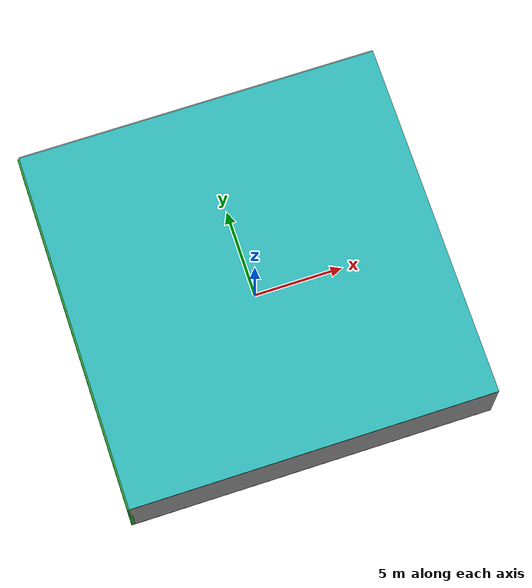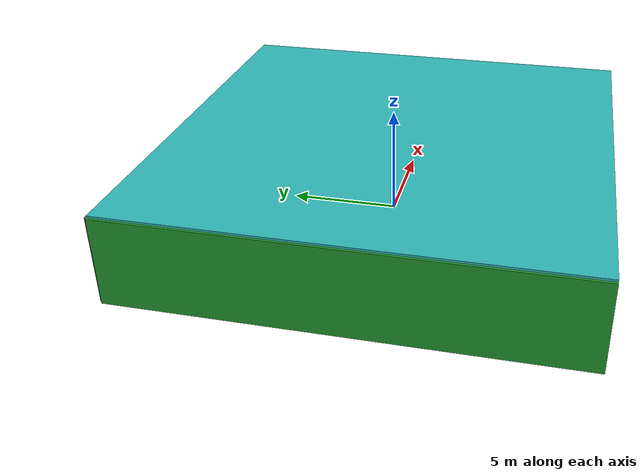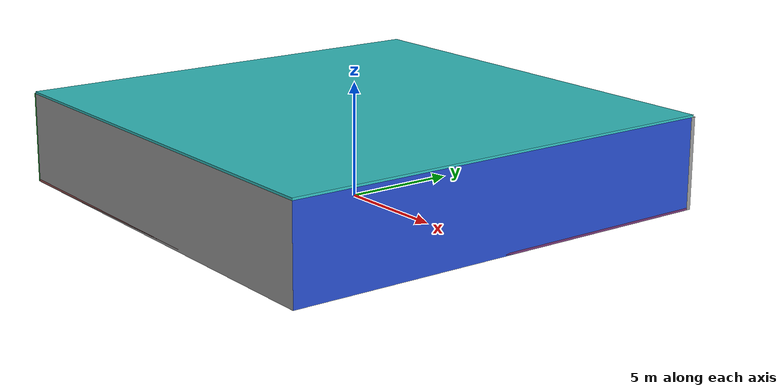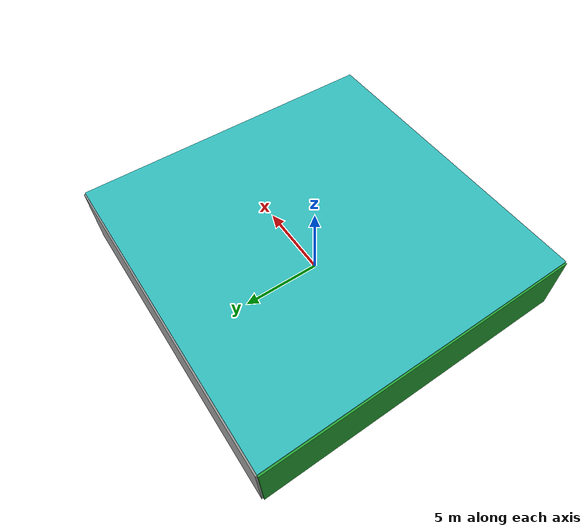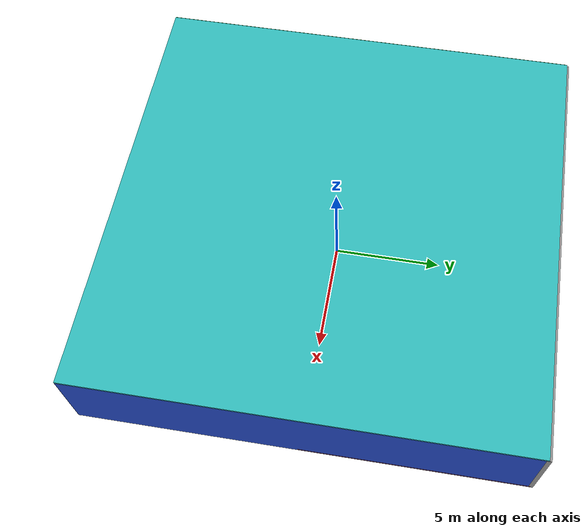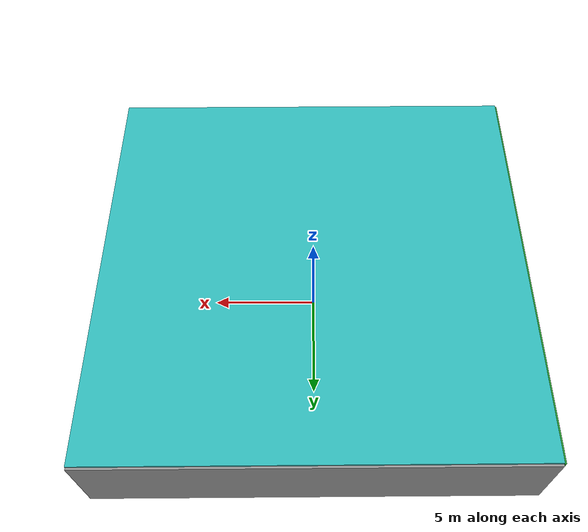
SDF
<sdf version="1.4">
 <world name="default">
  <physics type="ode">
   <max_step_size>0.001</max_step_size>
   <real_time_factor>1</real_time_factor>
   <real_time_update_rate>1000</real_time_update_rate>
   <gravity>0 0 -9.8</gravity>
  </physics>
  <scene><ambient>0.4 0.4 0.4 1</ambient><background>0.7 0.7 0.7 1</background><shadows>1</shadows></scene>
  <model name="Surrounding">
   <static>1</static>
   <link name="Ceiling">
    <collision name="Ceiling_Collision"><geometry><box><size>20 20 0.1</size></box></geometry></collision>
    <visual name="Ceiling_Visual">
     <geometry><box><size>20 20 0.1</size></box></geometry>
     <material>
      <script><uri>file://media/materials/scripts/gazebo.material</uri><name>Gazebo/Turquoise</name></script>
     </material>
    </visual>
    <pose>0 0 4.05 0 0 0</pose>
   </link>
   <link name="Wall_South">
    <collision name="Wall_South_Collision">
     <geometry><box><size>20 0 4</size></box></geometry>
     <pose>0 0 2 0 -0 0</pose>
    </collision>
    <visual name="Wall_South_Visual">
     <pose>0 0 2 0 -0 0</pose>
     <geometry><box><size>20 0 4</size></box></geometry>
     <material>
      <script><uri>file://media/materials/scripts/gazebo.material</uri><name>Gazebo/Grey</name></script>
     </material>
    </visual>
    <velocity_decay><linear>0</linear><angular>0</angular></velocity_decay>
    <pose>0 -10 0 0 -0 0</pose>
   </link>
   <link name="Wall_East">
    <collision name="Wall_21_Collision">
     <geometry><box><size>20 0 4</size></box></geometry>
     <pose>0 0 2 0 -0 0</pose>
    </collision>
    <visual name="Wall_21_Visual">
     <pose>0 0 2 0 -0 0</pose>
     <geometry><box><size>20 0 4</size></box></geometry>
     <material>
      <script><uri>file://media/materials/scripts/gazebo.material</uri><name>Gazebo/Blue</name></script>
     </material>
    </visual>
    <velocity_decay><linear>0</linear><angular>0</angular></velocity_decay>
    <pose>10 0 0 0 -0 1.5708</pose>
   </link>
   <link name="Wall_North">
    <collision name="Wall_22_Collision">
     <geometry><box><size>20 0.2 4</size></box></geometry>
     <pose>0 0 2 0 -0 0</pose>
    </collision>
    <visual name="Wall_22_Visual">
     <pose>0 0 2 0 -0 0</pose>
     <geometry><box><size>20 0.2 4</size></box></geometry>
     <material>
      <script><uri>file://media/materials/scripts/gazebo.material</uri><name>Gazebo/Grey</name></script>
     </material>
    </visual>
    <velocity_decay><linear>0</linear><angular>0</angular></velocity_decay>
    <pose>0 10 0 0 -0 0</pose>
   </link>
   <link name="Wall_West">
    <collision name="Wall_23_Collision">
     <geometry><box><size>20 0.2 4</size></box></geometry>
     <pose>0 0 2 0 -0 0</pose>
    </collision>
    <visual name="Wall_23_Visual">
     <pose>0 0 2 0 -0 0</pose>
     <geometry><box><size>20 0.2 4</size></box></geometry>
     <material>
      <script><uri>file://media/materials/scripts/gazebo.material</uri><name>Gazebo/Green</name></script>
     </material>
    </visual>
    <velocity_decay><linear>0</linear><angular>0</angular></velocity_decay>
    <pose>-10 0 0 0 0 -1.5708</pose>
   </link>
   <link name="Ground_link">
    <collision name="collision">
     <pose>0 0 .05 0 -0 0</pose>
     <geometry><box><size>20 20 0.1</size></box></geometry>
    </collision>
    <visual name="visual">
     <pose>0 0 .05 0 -0 0</pose>
     <geometry><box><size>20 20 0.1</size></box></geometry>
     <material>
      <script><uri>file://media/materials/scripts/gazebo.material</uri><name>Gazebo/RedTransparent</name></script>
     </material>
    </visual>
   </link>
   <static>1</static>
  </model>
  <spherical_coordinates>
   <surface_model>EARTH_WGS84</surface_model>
   <latitude_deg>0</latitude_deg>
   <longitude_deg>0</longitude_deg>
   <elevation>0</elevation>
   <heading_deg>0</heading_deg>
  </spherical_coordinates>
  <light name="lightball_0" type="diffuse">
   <diffuse>0.8 0.8 0.8 1</diffuse>
   <specular>0.2 0.2 0.2 1</specular>
   <attenuation>
    <range>100</range>
    <constant>0.7</constant>
    <linear>0.01</linear>
    <quadratic>0.001</quadratic>
   </attenuation>
   <direction>-0.5 0.1 -0.9</direction>
   <pose>5.72459722538 5.21046331719 0.761317201912 0 0 0</pose>
  </light>
  <light name="lightball_1" type="diffuse">
   <diffuse>0.8 0.8 0.8 1</diffuse>
   <specular>0.2 0.2 0.2 1</specular>
   <attenuation>
    <range>100</range>
    <constant>0.7</constant>
    <linear>0.01</linear>
    <quadratic>0.001</quadratic>
   </attenuation>
   <direction>-0.5 0.1 -0.9</direction>
   <pose>-6.1671624935 -3.11739351588 2.55500967657 0 0 0</pose>
  </light>
  <light name="lightball_2" type="diffuse">
   <diffuse>0.8 0.8 0.8 1</diffuse>
   <specular>0.2 0.2 0.2 1</specular>
   <attenuation>
    <range>100</range>
    <constant>0.7</constant>
    <linear>0.01</linear>
    <quadratic>0.001</quadratic>
   </attenuation>
   <direction>-0.5 0.1 -0.9</direction>
   <pose>-9.64216127761 -3.96304889712 3.89747487976 0 0 0</pose>
  </light>
  <light name="lightball_3" type="diffuse">
   <diffuse>0.8 0.8 0.8 1</diffuse>
   <specular>0.2 0.2 0.2 1</specular>
   <attenuation>
    <range>100</range>
    <constant>0.7</constant>
    <linear>0.01</linear>
    <quadratic>0.001</quadratic>
   </attenuation>
   <direction>-0.5 0.1 -0.9</direction>
   <pose>-2.99163439318 3.57249311562 0.838752783071 0 0 0</pose>
  </light>
  <light name="lightball_4" type="diffuse">
   <diffuse>0.8 0.8 0.8 1</diffuse>
   <specular>0.2 0.2 0.2 1</specular>
   <attenuation>
    <range>100</range>
    <constant>0.7</constant>
    <linear>0.01</linear>
    <quadratic>0.001</quadratic>
   </attenuation>
   <direction>-0.5 0.1 -0.9</direction>
   <pose>4.35706349189 3.88032289193 2.26364807277 0 0 0</pose>
  </light>
  <light name="lightball_5" type="diffuse">
   <diffuse>0.8 0.8 0.8 1</diffuse>
   <specular>0.2 0.2 0.2 1</specular>
   <attenuation>
    <range>100</range>
    <constant>0.7</constant>
    <linear>0.01</linear>
    <quadratic>0.001</quadratic>
   </attenuation>
   <direction>-0.5 0.1 -0.9</direction>
   <pose>-0.478612273658 9.58278806724 3.29901338864 0 0 0</pose>
  </light>
  <include><uri>model://cabinet</uri><pose>-6.32435589642 -4.18112620712 0 0 0 1.04903705228</pose></include>
  <include><uri>model://cabinet</uri><pose>-8.21250068061 -1.85623584846 0 0 0 0.846451140664</pose></include>
  <include><uri>model://cabinet</uri><pose>-2.0989887415 -5.09487872327 0 0 0 0.590745101974</pose></include>
  <include><uri>model://cabinet</uri><pose>1.48877849593 8.43411009045 0 0 0 2.549192471</pose></include>
  <include>
   <uri>model://robocup_3Dsim_goal</uri>
   <pose>5.0062840516 -3.69721658808 0 0 0 2.12435754529</pose>
  </include>
  <include>
   <uri>model://robocup_3Dsim_goal</uri>
   <pose>6.83485457147 6.37646006684 0 0 0 0.159713232827</pose>
  </include>
 </world>
</sdf>

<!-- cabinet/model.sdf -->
<sdf version="1.5">
  <model name="cabinet">
    <static>true</static>
    <link name="cabinet_bottom_plate">
      <inertial>
        <pose>0 0 -1 0 0 0</pose>
        <inertia>
          <ixx>2.050000</ixx>
          <ixy>0</ixy>
          <ixz>0</ixz>
          <iyy>2.050000</iyy>
          <iyz>0</iyz>
          <izz>2.050000</izz>
        </inertia>
        <mass>25.000000</mass>
      </inertial>
      <collision name="cabinet_bottom_plate_geom">
        <pose>0 0 0.010000 0 0 0</pose>
        <geometry>
          <box>
            <size>0.450000 0.450000 0.020000</size>
          </box>
        </geometry>
      </collision>
      <visual name="cabinet_bottom_plate_geom_visual">
        <pose>0 0 0.010000 0 0 0</pose>
        <geometry>
          <box>
            <size>0.450000 0.450000 0.020000</size>
          </box>
        </geometry>
        <material>
          <script>
            <uri>model://media/materials/scripts/gazebo.material</uri>
            <name>Gazebo/Wood</name>
          </script>
        </material>
      </visual>
      <collision name="cabinet_bottom_plate_geom_cabinet_back_plate">
        <pose>0.235000 0 0.510000 0 0 0</pose>
        <geometry>
          <box>
            <size>0.020000 0.450000 1.020000</size>
          </box>
        </geometry>
      </collision>
      <visual name="cabinet_bottom_plate_geom_cabinet_back_plate_visual">
        <pose>0.235000 0 0.510000 0 0 0</pose>
        <geometry>
          <box>
            <size>0.020000 0.450000 1.020000</size>
          </box>
        </geometry>
        <material>
          <script>
            <uri>model://media/materials/scripts/gazebo.material</uri>
            <name>Gazebo/Wood</name>
          </script>
        </material>
      </visual>
      <collision name="cabinet_bottom_plate_geom_cabinet_left_plate">
        <pose>0 0.235000 0.510000 0 0 0</pose>
        <geometry>
          <box>
            <size>0.450000 0.020000 1.020000</size>
          </box>
        </geometry>
      </collision>
      <visual name="cabinet_bottom_plate_geom_cabinet_left_plate_visual">
        <pose>0 0.235000 0.510000 0 0 0</pose>
        <geometry>
          <box>
            <size>0.450000 0.020000 1.020000</size>
          </box>
        </geometry>
        <material>
          <script>
            <uri>model://media/materials/scripts/gazebo.material</uri>
            <name>Gazebo/Wood</name>
          </script>
        </material>
      </visual>
      <collision name="cabinet_bottom_plate_geom_cabinet_middle_plate">
        <pose>0 0 0.510000 0 0 0</pose>
        <geometry>
          <box>
            <size>0.450000 0.450000 0.020000</size>
          </box>
        </geometry>
      </collision>
      <visual name="cabinet_bottom_plate_geom_cabinet_middle_plate_visual">
        <pose>0 0 0.510000 0 0 0</pose>
        <geometry>
          <box>
            <size>0.450000 0.450000 0.020000</size>
          </box>
        </geometry>
        <material>
          <script>
            <uri>model://media/materials/scripts/gazebo.material</uri>
            <name>Gazebo/Wood</name>
          </script>
        </material>
      </visual>
      <collision name="cabinet_bottom_plate_geom_cabinet_right_plate">
        <pose>0 -0.235000 0.510000 0 0 0</pose>
        <geometry>
          <box>
            <size>0.450000 0.020000 1.020000</size>
          </box>
        </geometry>
      </collision>
      <visual name="cabinet_bottom_plate_geom_cabinet_right_plate_visual">
        <pose>0 -0.235000 0.510000 0 0 0</pose>
        <geometry>
          <box>
            <size>0.450000 0.020000 1.020000</size>
          </box>
        </geometry>
        <material>
          <script>
            <uri>model://media/materials/scripts/gazebo.material</uri>
            <name>Gazebo/Wood</name>
          </script>
        </material>
      </visual>
      <collision name="cabinet_bottom_plate_geom_cabinet_top_plate">
        <pose>0 0 1.010000 0 0 0</pose>
        <geometry>
          <box>
            <size>0.450000 0.450000 0.020000</size>
          </box>
        </geometry>
      </collision>
      <visual name="cabinet_bottom_plate_geom_cabinet_top_plate_visual">
        <pose>0 0 1.010000 0 0 0</pose>
        <geometry>
          <box>
            <size>0.450000 0.450000 0.020000</size>
          </box>
        </geometry>
        <material>
          <script>
            <uri>model://media/materials/scripts/gazebo.material</uri>
            <name>Gazebo/Wood</name>
          </script>
        </material>
      </visual>
    </link>
  </model>
</sdf>

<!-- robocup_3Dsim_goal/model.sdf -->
<sdf version="1.5">
  <model name="robocup_3d_goal">
    <static>true</static>
    <link name="left_post">
      <pose>0 1.05 0.45 0 0 0</pose>
      <collision name="collision">
        <geometry>
          <cylinder>
            <radius>0.05</radius>
            <length>0.9</length>
          </cylinder>
        </geometry>
      </collision>
      <visual name="visual">
        <geometry>
          <cylinder>
            <radius>0.05</radius>
            <length>0.9</length>
          </cylinder>
        </geometry>
        <material>
          <script>
            <uri>file://media/materials/scripts/gazebo.material</uri>
            <name>Gazebo/ZincYellow</name>
          </script>
        </material>
      </visual>
    </link>
    <link name="left_support_horiz_lower">
      <pose>0.30 1.05 0.01 0 0 0</pose>
      <collision name="collision">
        <geometry>
          <box>
            <size>0.50 0.02 0.02</size>
          </box>
        </geometry>
      </collision>
      <visual name="visual">
        <geometry>
          <box>
            <size>0.50 0.02 0.02</size>
          </box>
        </geometry>
        <material>
          <script>
            <uri>file://media/materials/scripts/gazebo.material</uri>
            <name>Gazebo/White</name>
          </script>
        </material>
      </visual>
    </link>
    <link name="left_support_horiz_upper">
      <pose>0.30 1.05 0.79 0 0 0</pose>
      <collision name="collision">
        <geometry>
          <box>
            <size>0.50 0.02 0.02</size>
          </box>
        </geometry>
      </collision>
      <visual name="visual">
        <geometry>
          <box>
            <size>0.50 0.02 0.02</size>
          </box>
        </geometry>
        <material>
          <script>
            <uri>file://media/materials/scripts/gazebo.material</uri>
            <name>Gazebo/White</name>
          </script>
        </material>
      </visual>
    </link>
    <link name="left_support_vertical">
      <pose>0.56 1.05 0.4 0 1.5708 0</pose>
      <collision name="collision">
        <geometry>
          <box>
            <size>0.80 0.02 0.02</size>
          </box>
        </geometry>
      </collision>
      <visual name="visual">
        <geometry>
          <box>
            <size>0.80 0.02 0.02</size>
          </box>
        </geometry>
        <material>
          <script>
            <uri>file://media/materials/scripts/gazebo.material</uri>
            <name>Gazebo/White</name>
          </script>
        </material>
      </visual>
    </link>
    <link name="right_support_horiz_lower">
      <pose>0.30 -1.05 0.01 0 0 0</pose>
      <collision name="collision">
        <geometry>
          <box>
            <size>0.50 0.02 0.02</size>
          </box>
        </geometry>
      </collision>
      <visual name="visual">
        <geometry>
          <box>
            <size>0.50 0.02 0.02</size>
          </box>
        </geometry>
        <material>
          <script>
            <uri>file://media/materials/scripts/gazebo.material</uri>
            <name>Gazebo/White</name>
          </script>
        </material>
      </visual>
    </link>
    <link name="right_support_horiz_upper">
      <pose>0.30 -1.05 0.79 0 0 0</pose>
      <collision name="collision">
        <geometry>
          <box>
            <size>0.50 0.02 0.02</size>
          </box>
        </geometry>
      </collision>
      <visual name="visual">
        <geometry>
          <box>
            <size>0.50 0.02 0.02</size>
          </box>
        </geometry>
        <material>
          <script>
            <uri>file://media/materials/scripts/gazebo.material</uri>
            <name>Gazebo/White</name>
          </script>
        </material>
      </visual>
    </link>
    <link name="right_support_vertical">
      <pose>0.56 -1.05 0.4 0 1.5708 0</pose>
      <collision name="collision">
        <geometry>
          <box>
            <size>0.80 0.02 0.02</size>
          </box>
        </geometry>
      </collision>
      <visual name="visual">
        <geometry>
          <box>
            <size>0.80 0.02 0.02</size>
          </box>
        </geometry>
        <material>
          <script>
            <uri>file://media/materials/scripts/gazebo.material</uri>
            <name>Gazebo/White</name>
          </script>
        </material>
      </visual>
    </link>
    <link name="center_support_horiz_lower">
      <pose>0.56 0 0.01 0 1.5708 0</pose>
      <collision name="collision">
        <geometry>
          <box>
            <size>0.02 2.08 0.02</size>
          </box>
        </geometry>
      </collision>
      <visual name="visual">
        <geometry>
          <box>
            <size>0.02 2.08 0.02</size>
          </box>
        </geometry>
        <material>
          <script>
            <uri>file://media/materials/scripts/gazebo.material</uri>
            <name>Gazebo/White</name>
          </script>
        </material>
      </visual>
    </link>
    <link name="center_support_horiz_upper">
      <pose>0.56 0 0.79 0 1.5708 0</pose>
      <collision name="collision">
        <geometry>
          <box>
            <size>0.02 2.08 0.02</size>
          </box>
        </geometry>
      </collision>
      <visual name="visual">
        <geometry>
          <box>
            <size>0.02 2.08 0.02</size>
          </box>
        </geometry>
        <material>
          <script>
            <uri>file://media/materials/scripts/gazebo.material</uri>
            <name>Gazebo/White</name>
          </script>
        </material>
      </visual>
    </link>
    <link name="right_post">
      <pose>0 -1.05 0.45 0 0 0</pose>
      <collision name="collision">
        <geometry>
          <cylinder>
            <radius>0.05</radius>
            <length>0.9</length>
          </cylinder>
        </geometry>
      </collision>
      <visual name="visual">
        <geometry>
          <cylinder>
            <radius>0.05</radius>
            <length>0.9</length>
          </cylinder>
        </geometry>
        <material>
          <script>
            <uri>file://media/materials/scripts/gazebo.material</uri>
            <name>Gazebo/ZincYellow</name>
          </script>
        </material>
      </visual>
    </link>
    <link name="crossbar">
      <pose>0 0 0.85 1.57 1.57 0</pose>
      <collision name="collision">
        <geometry>
          <cylinder>
            <radius>0.05</radius>
            <length>2.0</length>
          </cylinder>
        </geometry>
      </collision>
      <visual name="visual">
        <geometry>
          <cylinder>
            <radius>0.05</radius>
            <length>2.0</length>
          </cylinder>
        </geometry>
        <material>
          <script>
            <uri>file://media/materials/scripts/gazebo.material</uri>
            <name>Gazebo/ZincYellow</name>
          </script>
        </material>
      </visual>
    </link>
    <link name="center_net">
      <pose>0.56 0 0.40 0 0 0</pose>
      <collision name="collision">
        <geometry>
          <box>
            <size>0.01 2.1 0.80</size>
          </box>
        </geometry>
      </collision>
      <visual name="visual">
        <geometry>
          <box>
            <size>0.01 2.1 0.80</size>
          </box>
        </geometry>
        <material>
          <script>
            <uri>model://../model_source/models/robocup09_spl_field/materials/scripts/</uri>
            <uri>model://../model_source/models/robocup09_spl_field/materials/textures/</uri>
            <name>RoboCup/Net</name>
          </script>
        </material>
      </visual>
    </link>
    <link name="left_net">
      <pose>0.30 1.05 0.40 0 0 0</pose>
      <collision name="collision">
        <geometry>
          <box>
            <size>0.50 0.01 0.76</size>
          </box>
        </geometry>
      </collision>
      <visual name="visual">
        <geometry>
          <box>
            <size>0.50 0.01 0.76</size>
          </box>
        </geometry>
        <material>
          <script>
            <uri>model://../model_source/models/robocup09_spl_field/materials/scripts/</uri>
            <uri>model://../model_source/models/robocup09_spl_field/materials/textures/</uri>
            <name>RoboCup/Net</name>
          </script>
        </material>
      </visual>
    </link>
    <link name="right_net">
      <pose>0.30 -1.05 0.40 0 0 0</pose>
      <collision name="collision">
        <geometry>
          <box>
            <size>0.50 0.01 0.76</size>
          </box>
        </geometry>
      </collision>
      <visual name="visual">
        <geometry>
          <box>
            <size>0.50 0.01 0.76</size>
          </box>
        </geometry>
        <material>
          <script>
            <uri>model://../model_source/models/robocup09_spl_field/materials/scripts/</uri>
            <uri>model://../model_source/models/robocup09_spl_field/materials/textures/</uri>
            <name>RoboCup/Net</name>
          </script>
        </material>
      </visual>
    </link>
  </model>
</sdf>
